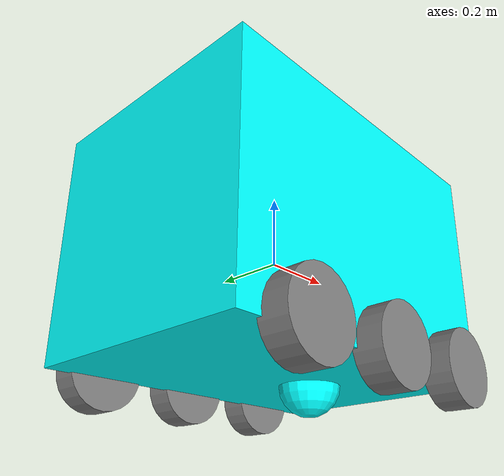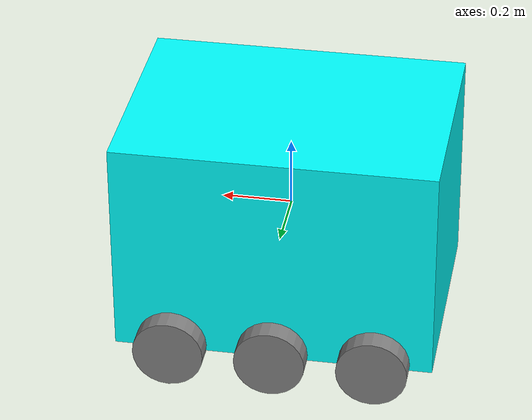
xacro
<?xml version="1.0"?>

<robot name="shanti" xmlns:xacro="http://www.ros.org/wiki/xacro">

  <!-- Define robot constants in meters-->
  <xacro:property name="base_width" value="0.6604" />
  <xacro:property name="base_length" value="0.9144" />
  <xacro:property name="base_height" value="0.635" />
  <xacro:property name="wheel_radius" value="0.1016" />
  <xacro:property name="wheel_width" value="0.0762" />
  <xacro:property name="wheel_ygap" value="0.025" />
  <xacro:property name="wheel_zoff" value="0.3" />
  <xacro:property name="wheel_xoff" value="0.2921" />
  <xacro:property name="caster_xoff" value="0.14" />
  <xacro:property name="lidar_radius" value="0.05" />
  <xacro:property name="lidar_width" value="0.04" />

  <!-- Define inertial property macros  -->
  <xacro:macro name="box_inertia" params="m w h d">
    <inertial>
      <origin xyz="0 0 0" rpy="${pi/2} 0 ${pi/2}" />
      <mass value="${m}" />
      <inertia ixx="${(m/12) * (h*h + d*d)}" ixy="0.0" ixz="0.0" iyy="${(m/12) * (w*w + d*d)}"
        iyz="0.0" izz="${(m/12) * (w*w + h*h)}" />
    </inertial>
  </xacro:macro>

  <xacro:macro name="cylinder_inertia" params="m r h">
    <inertial>
      <origin xyz="0 0 0" rpy="${pi/2} 0 0" />
      <mass value="${m}" />
      <inertia ixx="${(m/12) * (3*r*r + h*h)}" ixy="0" ixz="0" iyy="${(m/12) * (3*r*r + h*h)}"
        iyz="0" izz="${(m/2) * (r*r)}" />
    </inertial>
  </xacro:macro>

  <xacro:macro name="sphere_inertia" params="m r">
    <inertial>
      <mass value="${m}" />
      <inertia ixx="${(2/5) * m * (r*r)}" ixy="0.0" ixz="0.0" iyy="${(2/5) * m * (r*r)}" iyz="0.0"
        izz="${(2/5) * m * (r*r)}" />
    </inertial>
  </xacro:macro>

  <!-- Robot Base -->
  <link name="base_link">
    <visual>
      <geometry>
        <box size="${base_length} ${base_width} ${base_height}" />
      </geometry>
      <material name="Cyan">
        <color rgba="0 1.0 1.0 1.0" />
      </material>
    </visual>
    <xacro:box_inertia m="0.1" w="${base_width}" d="${base_length}" h="${base_height}" />
  </link>

  <!-- Robot Footprint -->
  <link name="base_footprint" />
  <joint name="base_joint" type="fixed">
    <parent link="base_link" />
    <child link="base_footprint" />
    <origin xyz="0.0 0.0 ${-(wheel_radius+wheel_zoff)}" rpy="0 0 0" />
  </joint>

  <!-- Wheels -->
  <xacro:macro name="wheel" params="prefix x_reflect y_reflect">
    <link name="${prefix}_link">
      <visual>
        <origin xyz="0 0 0" rpy="${pi/2} 0 0" />
        <geometry>
          <cylinder radius="${wheel_radius}" length="${wheel_width}" />
        </geometry>
        <material name="Gray">
          <color rgba="0.5 0.5 0.5 1.0" />
        </material>
      </visual>
      <collision>
        <origin xyz="0 0 0" rpy="${pi/2} 0 0" />
        <geometry>
          <cylinder radius="${wheel_radius}" length="${wheel_width}" />
        </geometry>
      </collision>

      <xacro:cylinder_inertia m="0.5" r="${wheel_radius}" h="${wheel_width}" />
    </link>

    <joint name="${prefix}_joint" type="continuous">
      <parent link="base_link" />
      <child link="${prefix}_link" />
      <origin xyz="${x_reflect*wheel_xoff} ${y_reflect*(base_width/2+wheel_ygap)} ${-wheel_zoff}"
        rpy="0 0 0" />
      <axis xyz="0 1 0" />
    </joint>
  </xacro:macro>

  <xacro:wheel prefix="drivewhl_l1" x_reflect="-1" y_reflect="1"/>
  <xacro:wheel prefix="drivewhl_l2" x_reflect="0" y_reflect="1" />
  <xacro:wheel prefix="drivewhl_l3" x_reflect="1" y_reflect="1" />
  <xacro:wheel prefix="drivewhl_r1" x_reflect="-1" y_reflect="-1" />
  <xacro:wheel prefix="drivewhl_r2" x_reflect="0" y_reflect="-1" />
  <xacro:wheel prefix="drivewhl_r3" x_reflect="1" y_reflect="-1" />

  <!-- Caster Wheel  -->
  <link name="front_caster">
    <visual>
      <geometry>
        <sphere radius="${(wheel_radius+wheel_zoff-(base_height/2))}" />
      </geometry>
      <material name="Cyan">
        <color rgba="0 1.0 1.0 1.0" />
      </material>
    </visual>
    <collision>
      <origin xyz="0 0 0" rpy="0 0 0" />
      <geometry>
        <sphere radius="${(wheel_radius+wheel_zoff-(base_height/2))}" />
      </geometry>
    </collision>

    <xacro:sphere_inertia m="0.5" r="${(wheel_radius+wheel_zoff-(base_height/2))}" />
  </link>

  <joint name="caster_joint" type="fixed">
    <parent link="base_link" />
    <child link="front_caster" />
    <origin xyz="${caster_xoff} 0.0 ${-(base_height/2)}" rpy="0 0 0" />
  </joint>

  <!-- IMU Sensor -->
  <link name="imu_link">
    <visual>
      <geometry>
        <box size="0.1 0.1 0.1" />
      </geometry>
    </visual>

    <collision>
      <geometry>
        <box size="0.1 0.1 0.1" />
      </geometry>
    </collision>

    <xacro:box_inertia m="0.1" w="0.1" d="0.1" h="0.1" />
  </link>

  <joint name="imu_joint" type="fixed">
    <parent link="base_link" />
    <child link="imu_link" />
    <origin xyz="0 0 0.01" />
  </joint>

<!-- GPS Sensor -->
<gazebo reference="gps_link">
  <sensor name="shanti_gps" type="gps">
    <always_on>true</always_on>
    <update_rate>1</update_rate>
    <pose>0 0 0 0 0 0</pose>
    <gps>
      <position_sensing>
        <horizontal>
          <noise type="gaussian">
            <mean>0.0</mean>
            <stddev>0.01</stddev>
          </noise>
        </horizontal>
        <vertical>
          <noise type="gaussian">
            <mean>0.0</mean>
            <stddev>0.01</stddev>
          </noise>
        </vertical>
      </position_sensing>
    </gps>
    <plugin name="my_gps_plugin" filename="libgazebo_ros_gps_sensor.so">
      <ros>
        <remapping>~/out:=/gps/fix</remapping>
      </ros>
    </plugin>
  </sensor>
</gazebo>

  <!-- Add the gps link so we get a static transform for the GPS -->
  <joint name="gps_joint" type="fixed">
    <parent link="base_link"/>
    <child link="gps_link"/>
    <origin xyz="0 0 0" rpy="0 0 0"/>
  </joint>

  <link name="gps_link"/>

  <!-- Lidar Sensor-->
  <link name="lidar_link">
    <visual>
      <geometry>
        <cylinder radius="${lidar_radius}" length="${lidar_width}" />
      </geometry>
      <material name="Red">
        <color rgba="0.7 0.5 0.5 1.0" />
      </material>
    </visual>
    <collision>
      <geometry>
        <cylinder radius="${lidar_radius}" length="${lidar_width}" />
      </geometry>
    </collision>

    <xacro:cylinder_inertia m="0.5" r="${lidar_radius}" h="${lidar_width}" />
  </link>

  <joint name="lidar_joint" type="fixed">
    <parent link="base_link" />
    <child link="lidar_link" />
    <origin xyz="0 0 0.111" />
  </joint>

  <gazebo reference="imu_link">
    <sensor name="imu_sensor" type="imu">
      <plugin filename="libgazebo_ros_imu_sensor.so" name="imu_plugin">
        <ros>
          <namespace>/demo</namespace>
          <remapping>~/out:=imu</remapping>
        </ros>
        <initial_orientation_as_reference>false</initial_orientation_as_reference>
      </plugin>
      <always_on>true</always_on>
      <update_rate>100</update_rate>
      <visualize>true</visualize>
      <imu>
        <angular_velocity>
          <x>
            <noise type="gaussian">
              <mean>0.0</mean>
              <stddev>2e-4</stddev>
              <bias_mean>0.0000075</bias_mean>
              <bias_stddev>0.0000008</bias_stddev>
            </noise>
          </x>
          <y>
            <noise type="gaussian">
              <mean>0.0</mean>
              <stddev>2e-4</stddev>
              <bias_mean>0.0000075</bias_mean>
              <bias_stddev>0.0000008</bias_stddev>
            </noise>
          </y>
          <z>
            <noise type="gaussian">
              <mean>0.0</mean>
              <stddev>2e-4</stddev>
              <bias_mean>0.0000075</bias_mean>
              <bias_stddev>0.0000008</bias_stddev>
            </noise>
          </z>
        </angular_velocity>
        <linear_acceleration>
          <x>
            <noise type="gaussian">
              <mean>0.0</mean>
              <stddev>1.7e-2</stddev>
              <bias_mean>0.1</bias_mean>
              <bias_stddev>0.001</bias_stddev>
            </noise>
          </x>
          <y>
            <noise type="gaussian">
              <mean>0.0</mean>
              <stddev>1.7e-2</stddev>
              <bias_mean>0.1</bias_mean>
              <bias_stddev>0.001</bias_stddev>
            </noise>
          </y>
          <z>
            <noise type="gaussian">
              <mean>0.0</mean>
              <stddev>1.7e-2</stddev>
              <bias_mean>0.1</bias_mean>
              <bias_stddev>0.001</bias_stddev>
            </noise>
          </z>
        </linear_acceleration>
      </imu>
    </sensor>
  </gazebo>

  <gazebo reference="lidar_link">
    <sensor name="lidar" type="ray">
      <pose> 0 0 0 0 0 0</pose>
      <visualize>true</visualize>
      <update_rate>10</update_rate>
      <ray>
        <scan>
          <horizontal>
            <samples>360</samples>
            <min_angle>-3.14</min_angle>
            <max_angle>3.14</max_angle>
          </horizontal>
        </scan>
        <range>
          <min>0.3</min>
          <max>12</max>
        </range>
      </ray>
      <plugin name="lidar_controller" filename="libgazebo_ros_ray_sensor.so">
        <ros>
          <argument>~/out:=scan</argument>
        </ros>
        <output_type>sensor_msgs/LaserScan</output_type>
        <frame_name>lidar_link</frame_name>
      </plugin>

    </sensor>
  </gazebo>

  <gazebo>
    <plugin name='diff_drive' filename='libgazebo_ros_diff_drive.so'>
      <ros>
        <namespace>/diff_drive/center</namespace>
      </ros>

      <!-- wheels -->
      <left_joint>drivewhl_l2_joint</left_joint>
      <right_joint>drivewhl_r2_joint</right_joint>

      <!-- kinematics -->
      <wheel_separation>0.4</wheel_separation>
      <wheel_diameter>0.2</wheel_diameter>

      <!-- limits -->
      <max_wheel_torque>20</max_wheel_torque>
      <max_wheel_acceleration>1.0</max_wheel_acceleration>

      <!-- output -->
      <publish_odom>true</publish_odom>
      <publish_odom_tf>false</publish_odom_tf>
      <publish_wheel_tf>true</publish_wheel_tf>

      <odometry_frame>odom</odometry_frame>
      <robot_base_frame>base_link</robot_base_frame>
    </plugin>
  </gazebo>

  <gazebo>
    <plugin name='diff_drive' filename='libgazebo_ros_diff_drive.so'>
      <ros>
        <namespace>/diff_drive/front</namespace>
      </ros>

      <!-- wheels -->
      <left_joint>drivewhl_l1_joint</left_joint>
      <right_joint>drivewhl_r1_joint</right_joint>

      <!-- kinematics -->
      <wheel_separation>0.4</wheel_separation>
      <wheel_diameter>0.2</wheel_diameter>

      <!-- limits -->
      <max_wheel_torque>20</max_wheel_torque>
      <max_wheel_acceleration>1.0</max_wheel_acceleration>

      <!-- output -->
      <publish_odom>true</publish_odom>
      <publish_odom_tf>false</publish_odom_tf>
      <publish_wheel_tf>true</publish_wheel_tf>

      <odometry_frame>odom</odometry_frame>
      <robot_base_frame>base_link</robot_base_frame>
    </plugin>
  </gazebo>

  <gazebo>
    <plugin name='diff_drive' filename='libgazebo_ros_diff_drive.so'>
      <ros>
        <namespace>/diff_drive/back</namespace>
      </ros>

      <!-- wheels -->
      <left_joint>drivewhl_l3_joint</left_joint>
      <right_joint>drivewhl_r3_joint</right_joint>

      <!-- kinematics -->
      <wheel_separation>0.4</wheel_separation>
      <wheel_diameter>0.2</wheel_diameter>

      <!-- limits -->
      <max_wheel_torque>20</max_wheel_torque>
      <max_wheel_acceleration>1.0</max_wheel_acceleration>

      <!-- output -->
      <publish_odom>true</publish_odom>
      <publish_odom_tf>false</publish_odom_tf>
      <publish_wheel_tf>true</publish_wheel_tf>

      <odometry_frame>odom</odometry_frame>
      <robot_base_frame>base_link</robot_base_frame>
    </plugin>
  </gazebo>

</robot>
